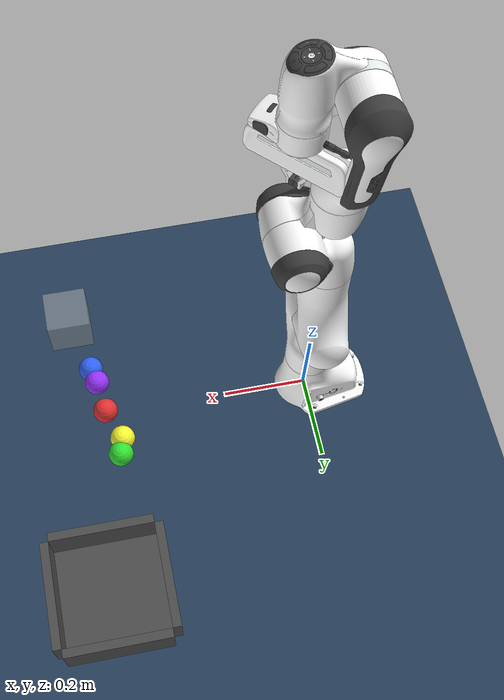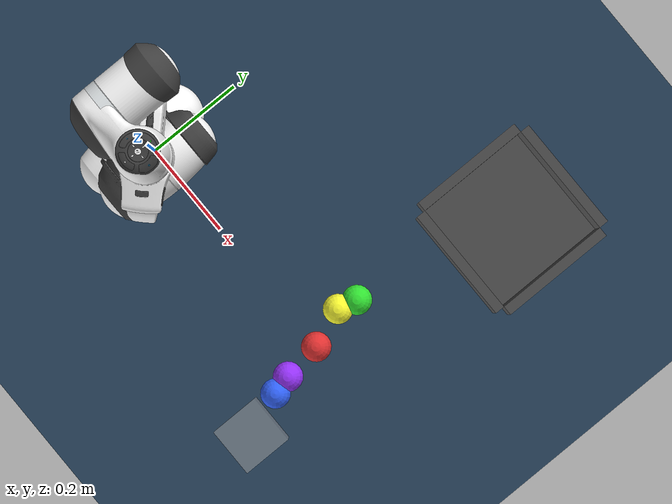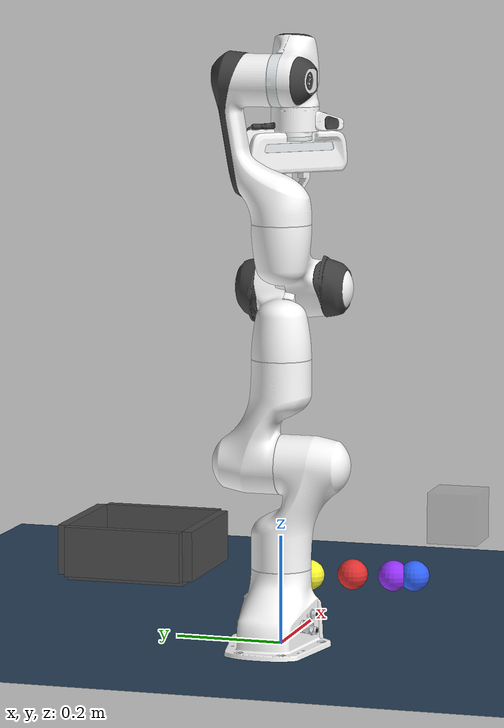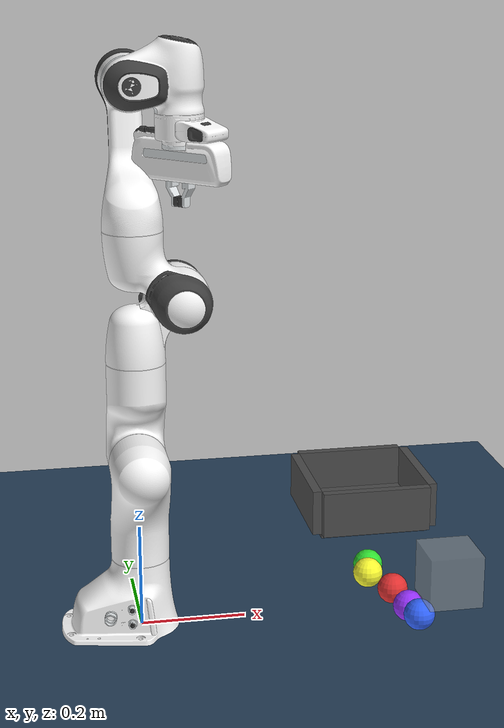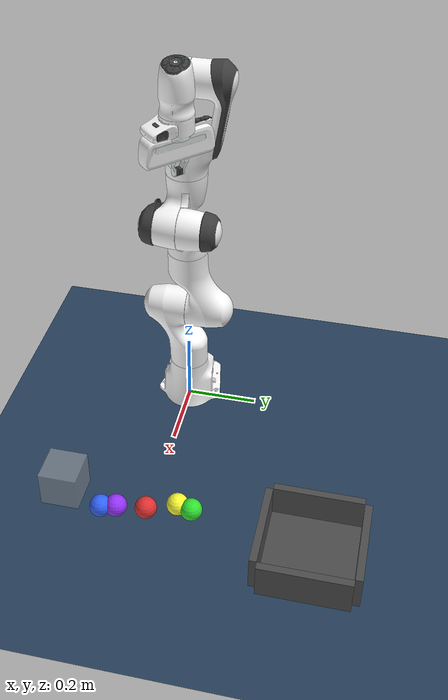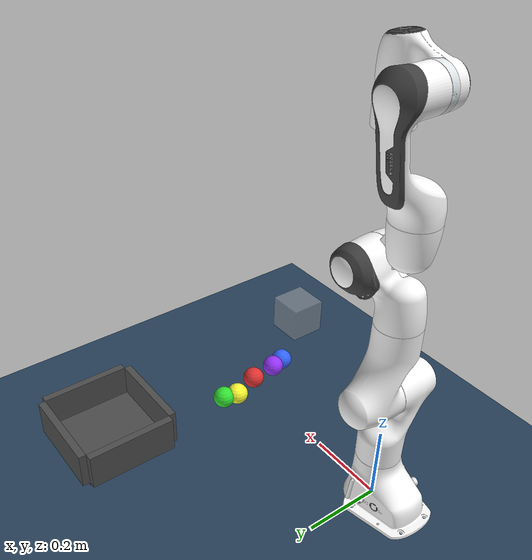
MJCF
<mujoco model="panda pick-place task">
  <include file="panda.xml"/>

  <statistic center="0.6 0 0.4" extent="1.5"/>

  <option timestep="0.002" integrator="implicitfast" iterations="50" ls_iterations="100">
    <flag eulerdamp="disable"/>
  </option>

  <default>
    <default class="object">
      <geom friction="5.0 0.1 0.01" solimp="0.998 0.998 0.001" solref="0.002 1" condim="4"/>
    </default>
  </default>

  <custom>
    <numeric data="12" name="max_contact_points"/>
  </custom>

  <visual>
    <headlight diffuse="0.6 0.6 0.6" ambient="0.3 0.3 0.3" specular="0 0 0"/>
    <rgba haze="0.15 0.25 0.35 1"/>
    <global azimuth="120" elevation="-20"/>
  </visual>

  <asset>
    <texture type="skybox" builtin="gradient" rgb1="0.3 0.5 0.7" rgb2="0 0 0" width="512" height="3072"/>
    <texture type="2d" name="groundplane" builtin="checker" mark="edge" rgb1="0.2 0.3 0.4" rgb2="0.1 0.2 0.3"
      markrgb="0.8 0.8 0.8" width="300" height="300"/>
    <material name="groundplane" texture="groundplane" texuniform="true" texrepeat="5 5" reflectance="0.2"/>
  </asset>

  <worldbody>
    <light name="top_light" pos="0 0 1.5" dir="0 0 -1" directional="true"/>
    <geom name="floor" size="0 0 0.05" type="plane" material="groundplane" contype="1"/>

    <!-- Pick-and-place task: colored spheres on table -->
    <!-- Positioned at 0.5m (proven working position with successful grasp) -->
    <!-- Higher friction and softer contacts for better grasping -->
    <body name="object_body_red" pos="0.5 0 0.03">
      <freejoint/>
      <geom name="object_geom_red" type="sphere" size="0.03" rgba="0.9 0.2 0.2 1"
            class="object" contype="2" conaffinity="1" mass="0.05"/>
      <site name="object_site_red" pos="0 0 0" size="0.01" rgba="1 0 0 0"/>
    </body>

    <body name="object_body_green" pos="0.48 0.12 0.03">
      <freejoint/>
      <geom name="object_geom_green" type="sphere" size="0.03" rgba="0.2 0.9 0.2 1"
            class="object" contype="2" conaffinity="1" mass="0.05"/>
      <site name="object_site_green" pos="0 0 0" size="0.01" rgba="0 1 0 0"/>
    </body>

    <body name="object_body_blue" pos="0.52 -0.12 0.03">
      <freejoint/>
      <geom name="object_geom_blue" type="sphere" size="0.03" rgba="0.2 0.4 1 1"
            class="object" contype="2" conaffinity="1" mass="0.05"/>
      <site name="object_site_blue" pos="0 0 0" size="0.01" rgba="0 0 1 0"/>
    </body>

    <body name="object_body_yellow" pos="0.47 0.08 0.03">
      <freejoint/>
      <geom name="object_geom_yellow" type="sphere" size="0.03" rgba="1 1 0.2 1"
            class="object" contype="2" conaffinity="1" mass="0.05"/>
      <site name="object_site_yellow" pos="0 0 0" size="0.01" rgba="1 1 0 0"/>
    </body>

    <body name="object_body_purple" pos="0.51 -0.08 0.03">
      <freejoint/>
      <geom name="object_geom_purple" type="sphere" size="0.03" rgba="0.6 0.2 1 1"
            class="object" contype="2" conaffinity="1" mass="0.05"/>
      <site name="object_site_purple" pos="0 0 0" size="0.01" rgba="0.6 0 1 0"/>
    </body>

    <!-- Goal bin - positioned closer to robot base for easier center placement -->
    <body name="bin" pos="0.55 0.45 0.0">
      <geom name="bin_bottom" type="box" size="0.12 0.12 0.01" rgba="0.3 0.3 0.3 1" pos="0 0 0.01"/>
      <geom name="bin_wall_x+" type="box" size="0.01 0.12 0.05" rgba="0.3 0.3 0.3 1" pos="0.13 0 0.06"/>
      <geom name="bin_wall_x-" type="box" size="0.01 0.12 0.05" rgba="0.3 0.3 0.3 1" pos="-0.13 0 0.06"/>
      <geom name="bin_wall_y+" type="box" size="0.12 0.01 0.05" rgba="0.3 0.3 0.3 1" pos="0 0.13 0.06"/>
      <geom name="bin_wall_y-" type="box" size="0.12 0.01 0.05" rgba="0.3 0.3 0.3 1" pos="0 -0.13 0.06"/>
      <site name="bin_site" pos="0 0 0.08" size="0.02" rgba="1 1 0 0"/>
    </body>

    <!-- Optional occluder -->
    <body name="occluder_body" pos="0.55 -0.2 0.15">
      <freejoint/>
      <geom name="occluder_geom" type="box" size="0.05 0.05 0.05" rgba="0.7 0.7 0.7 0.5" contype="1" conaffinity="1" mass="0.1"/>
    </body>

    <!-- Overhead camera looking straight down -->
    <camera name="top" mode="fixed" pos="0.6 0 1.0" euler="180 0 0" fovy="55"/>

  </worldbody>

  <!-- Keyframes for pick-and-place (adapted from Menagerie mjx_single_cube.xml) -->
  <!-- qpos order: 7 arm joints + 2 gripper joints + 5 objects (7 DOF each: xyz + quat wxyz) + 1 occluder (7 DOF) = 51 total -->
  <keyframe>
    <!-- Home: Forward-reaching comfortable pose -->
    <key name="home"
      qpos="0 0.3 0 -1.57079 0 2.0 -0.7853 0.04 0.04
            0.5 0 0.03 1 0 0 0
            0.48 0.12 0.03 1 0 0 0
            0.52 -0.12 0.03 1 0 0 0
            0.47 0.08 0.03 1 0 0 0
            0.51 -0.08 0.03 1 0 0 0
            0.55 -0.2 0.15 1 0 0 0"
      ctrl="0 0.3 0 -1.57079 0 2.0 -0.7853 255"/>

    <!-- Pre-grasp: Above object at safe height (adapted from "pickup" in Menagerie) -->
    <key name="pre_grasp"
      qpos="0.29 0.45 -0.14 -2.1 -0.03 2.5 -0.49 0.04 0.04
            0.5 0 0.03 1 0 0 0
            0.48 0.12 0.03 1 0 0 0
            0.52 -0.12 0.03 1 0 0 0
            0.47 0.08 0.03 1 0 0 0
            0.51 -0.08 0.03 1 0 0 0
            0.55 -0.2 0.15 1 0 0 0"
      ctrl="0.29 0.45 -0.14 -2.1 -0.03 2.5 -0.49 255"/>

    <!-- Grasp: Lowered to object level -->
    <key name="grasp"
      qpos="0.29 0.51 -0.14 -2.18 -0.03 2.52 -0.49 0.04 0.04
            0.5 0 0.03 1 0 0 0
            0.48 0.12 0.03 1 0 0 0
            0.52 -0.12 0.03 1 0 0 0
            0.47 0.08 0.03 1 0 0 0
            0.51 -0.08 0.03 1 0 0 0
            0.55 -0.2 0.15 1 0 0 0"
      ctrl="0.29 0.51 -0.14 -2.18 -0.03 2.52 -0.49 255"/>

    <!-- Grasp closed: Same position, gripper closed -->
    <key name="grasp_closed"
      qpos="0.29 0.51 -0.14 -2.18 -0.03 2.52 -0.49 0.0 0.0
            0.5 0 0.03 1 0 0 0
            0.48 0.12 0.03 1 0 0 0
            0.52 -0.12 0.03 1 0 0 0
            0.47 0.08 0.03 1 0 0 0
            0.51 -0.08 0.03 1 0 0 0
            0.55 -0.2 0.15 1 0 0 0"
      ctrl="0.29 0.51 -0.14 -2.18 -0.03 2.52 -0.49 0"/>

    <!-- Lift: Raised back to safe height -->
    <key name="lift"
      qpos="0.29 0.45 -0.14 -2.1 -0.03 2.5 -0.49 0.0 0.0
            0.5 0 0.03 1 0 0 0
            0.48 0.12 0.03 1 0 0 0
            0.52 -0.12 0.03 1 0 0 0
            0.47 0.08 0.03 1 0 0 0
            0.51 -0.08 0.03 1 0 0 0
            0.55 -0.2 0.15 1 0 0 0"
      ctrl="0.29 0.45 -0.14 -2.1 -0.03 2.5 -0.49 0"/>

    <!-- Transport: Move toward bin (higher Z, forward X) -->
    <key name="transport"
      qpos="0.4 0.3 -0.1 -1.9 0.0 2.3 -0.6 0.0 0.0
            0.5 0 0.03 1 0 0 0
            0.48 0.12 0.03 1 0 0 0
            0.52 -0.12 0.03 1 0 0 0
            0.47 0.08 0.03 1 0 0 0
            0.51 -0.08 0.03 1 0 0 0
            0.55 -0.2 0.15 1 0 0 0"
      ctrl="0.4 0.3 -0.1 -1.9 0.0 2.3 -0.6 0"/>

    <!-- Place: Lower into bin -->
    <key name="place"
      qpos="0.5 0.2 -0.08 -1.8 0.05 2.2 -0.65 0.0 0.0
            0.5 0 0.03 1 0 0 0
            0.48 0.12 0.03 1 0 0 0
            0.52 -0.12 0.03 1 0 0 0
            0.47 0.08 0.03 1 0 0 0
            0.51 -0.08 0.03 1 0 0 0
            0.55 -0.2 0.15 1 0 0 0"
      ctrl="0.5 0.2 -0.08 -1.8 0.05 2.2 -0.65 0"/>

    <!-- Place open: Release object -->
    <key name="place_open"
      qpos="0.5 0.2 -0.08 -1.8 0.05 2.2 -0.65 0.04 0.04
            0.5 0 0.03 1 0 0 0
            0.48 0.12 0.03 1 0 0 0
            0.52 -0.12 0.03 1 0 0 0
            0.47 0.08 0.03 1 0 0 0
            0.51 -0.08 0.03 1 0 0 0
            0.55 -0.2 0.15 1 0 0 0"
      ctrl="0.5 0.2 -0.08 -1.8 0.05 2.2 -0.65 255"/>
  </keyframe>

</mujoco>

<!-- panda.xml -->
<mujoco model="panda">
  <compiler angle="radian" meshdir="assets" autolimits="true"/>

  <option timestep="0.005" iterations="5" ls_iterations="8" integrator="implicitfast"/>

  <default>
    <default class="panda">
      <material specular="0.5" shininess="0.25"/>
      <joint armature="0.5" damping="10" axis="0 0 1" range="-2.8973 2.8973"/>
      <general dyntype="none" biastype="affine" ctrlrange="-2.8973 2.8973" forcerange="-87 87"/>
      <position forcerange="-100 100"/>
      <default class="finger">
        <joint axis="0 1 0" type="slide" range="0 0.04" damping="10"/>
      </default>

      <default class="visual">
        <geom type="mesh" contype="0" conaffinity="0" group="2"/>
      </default>
      <default class="collision">
        <geom type="mesh" group="3"/>
        <default class="fingertip_pad_collision_1">
          <geom type="box" size="0.0085 0.004 0.0085" pos="0 0.0055 0.0445" friction="5.0 0.1 0.01" solimp="0.998 0.998 0.001" solref="0.002 1" condim="4" contype="1" conaffinity="1"/>
        </default>
        <default class="fingertip_pad_collision_2">
          <geom type="box" size="0.003 0.002 0.003" pos="0.0055 0.002 0.05" friction="5.0 0.1 0.01" solimp="0.998 0.998 0.001" solref="0.002 1" condim="4" contype="1" conaffinity="1"/>
        </default>
        <default class="fingertip_pad_collision_3">
          <geom type="box" size="0.003 0.002 0.003" pos="-0.0055 0.002 0.05" friction="5.0 0.1 0.01" solimp="0.998 0.998 0.001" solref="0.002 1" condim="4" contype="1" conaffinity="1"/>
        </default>
        <default class="fingertip_pad_collision_4">
          <geom type="box" size="0.003 0.002 0.0035" pos="0.0055 0.002 0.0395" friction="5.0 0.1 0.01" solimp="0.998 0.998 0.001" solref="0.002 1" condim="4" contype="1" conaffinity="1"/>
        </default>
        <default class="fingertip_pad_collision_5">
          <geom type="box" size="0.003 0.002 0.0035" pos="-0.0055 0.002 0.0395" friction="5.0 0.1 0.01" solimp="0.998 0.998 0.001" solref="0.002 1" condim="4" contype="1" conaffinity="1"/>
        </default>
      </default>
    </default>
  </default>

  <asset>
    <material class="panda" name="white" rgba="1 1 1 1"/>
    <material class="panda" name="off_white" rgba="0.901961 0.921569 0.929412 1"/>
    <material class="panda" name="black" rgba="0.25 0.25 0.25 1"/>
    <material class="panda" name="green" rgba="0 1 0 1"/>
    <material class="panda" name="light_blue" rgba="0.039216 0.541176 0.780392 1"/>

    <!-- Collision meshes -->
    <mesh name="link0_c" file="link0.stl"/>
    <mesh name="link1_c" file="link1.stl"/>
    <mesh name="link2_c" file="link2.stl"/>
    <mesh name="link3_c" file="link3.stl"/>
    <mesh name="link4_c" file="link4.stl"/>
    <mesh name="link5_c0" file="link5_collision_0.obj"/>
    <mesh name="link5_c1" file="link5_collision_1.obj"/>
    <mesh name="link5_c2" file="link5_collision_2.obj"/>
    <mesh name="link6_c" file="link6.stl"/>
    <mesh name="link7_c" file="link7.stl"/>
    <mesh name="hand_c" file="hand.stl"/>

    <!-- Visual meshes -->
    <mesh file="link0_0.obj"/>
    <mesh file="link0_1.obj"/>
    <mesh file="link0_2.obj"/>
    <mesh file="link0_3.obj"/>
    <mesh file="link0_4.obj"/>
    <mesh file="link0_5.obj"/>
    <mesh file="link0_7.obj"/>
    <mesh file="link0_8.obj"/>
    <mesh file="link0_9.obj"/>
    <mesh file="link0_10.obj"/>
    <mesh file="link0_11.obj"/>
    <mesh file="link1.obj"/>
    <mesh file="link2.obj"/>
    <mesh file="link3_0.obj"/>
    <mesh file="link3_1.obj"/>
    <mesh file="link3_2.obj"/>
    <mesh file="link3_3.obj"/>
    <mesh file="link4_0.obj"/>
    <mesh file="link4_1.obj"/>
    <mesh file="link4_2.obj"/>
    <mesh file="link4_3.obj"/>
    <mesh file="link5_0.obj"/>
    <mesh file="link5_1.obj"/>
    <mesh file="link5_2.obj"/>
    <mesh file="link6_0.obj"/>
    <mesh file="link6_1.obj"/>
    <mesh file="link6_2.obj"/>
    <mesh file="link6_3.obj"/>
    <mesh file="link6_4.obj"/>
    <mesh file="link6_5.obj"/>
    <mesh file="link6_6.obj"/>
    <mesh file="link6_7.obj"/>
    <mesh file="link6_8.obj"/>
    <mesh file="link6_9.obj"/>
    <mesh file="link6_10.obj"/>
    <mesh file="link6_11.obj"/>
    <mesh file="link6_12.obj"/>
    <mesh file="link6_13.obj"/>
    <mesh file="link6_14.obj"/>
    <mesh file="link6_15.obj"/>
    <mesh file="link6_16.obj"/>
    <mesh file="link7_0.obj"/>
    <mesh file="link7_1.obj"/>
    <mesh file="link7_2.obj"/>
    <mesh file="link7_3.obj"/>
    <mesh file="link7_4.obj"/>
    <mesh file="link7_5.obj"/>
    <mesh file="link7_6.obj"/>
    <mesh file="link7_7.obj"/>
    <mesh file="hand_0.obj"/>
    <mesh file="hand_1.obj"/>
    <mesh file="hand_2.obj"/>
    <mesh file="hand_3.obj"/>
    <mesh file="hand_4.obj"/>
    <mesh file="finger_0.obj"/>
    <mesh file="finger_1.obj"/>
  </asset>

  <worldbody>
    <light name="top" pos="0 0 2" mode="trackcom"/>
    <body name="link0" childclass="panda">
      <inertial mass="0.629769" pos="-0.041018 -0.00014 0.049974"
        fullinertia="0.00315 0.00388 0.004285 8.2904e-7 0.00015 8.2299e-6"/>
      <geom mesh="link0_0" material="off_white" class="visual"/>
      <geom mesh="link0_1" material="black" class="visual"/>
      <geom mesh="link0_2" material="off_white" class="visual"/>
      <geom mesh="link0_3" material="black" class="visual"/>
      <geom mesh="link0_4" material="off_white" class="visual"/>
      <geom mesh="link0_5" material="black" class="visual"/>
      <geom mesh="link0_7" material="white" class="visual"/>
      <geom mesh="link0_8" material="white" class="visual"/>
      <geom mesh="link0_9" material="black" class="visual"/>
      <geom mesh="link0_10" material="off_white" class="visual"/>
      <geom mesh="link0_11" material="white" class="visual"/>
      <geom mesh="link0_c" class="collision"/>
      <body name="link1" pos="0 0 0.333">
        <inertial mass="4.970684" pos="0.003875 0.002081 -0.04762"
          fullinertia="0.70337 0.70661 0.0091170 -0.00013900 0.0067720 0.019169"/>
        <joint name="joint1" damping="40"/>
        <geom material="white" mesh="link1" class="visual"/>
        <geom mesh="link1_c" class="collision"/>
        <body name="link2" quat="1 -1 0 0">
          <inertial mass="0.646926" pos="-0.003141 -0.02872 0.003495"
            fullinertia="0.0079620 2.8110e-2 2.5995e-2 -3.925e-3 1.0254e-2 7.04e-4"/>
          <joint name="joint2" range="-1.7628 1.7628" damping="40"/>
          <geom material="white" mesh="link2" class="visual"/>
          <geom mesh="link2_c" class="collision"/>
          <body name="link3" pos="0 -0.316 0" quat="1 1 0 0">
            <joint name="joint3" damping="40"/>
            <inertial mass="3.228604" pos="2.7518e-2 3.9252e-2 -6.6502e-2"
              fullinertia="3.7242e-2 3.6155e-2 1.083e-2 -4.761e-3 -1.1396e-2 -1.2805e-2"/>
            <geom mesh="link3_0" material="white" class="visual"/>
            <geom mesh="link3_1" material="white" class="visual"/>
            <geom mesh="link3_2" material="white" class="visual"/>
            <geom mesh="link3_3" material="black" class="visual"/>
            <geom mesh="link3_c" class="collision"/>
            <body name="link4" pos="0.0825 0 0" quat="1 1 0 0">
              <inertial mass="3.587895" pos="-5.317e-2 1.04419e-1 2.7454e-2"
                fullinertia="2.5853e-2 1.9552e-2 2.8323e-2 7.796e-3 -1.332e-3 8.641e-3"/>
              <joint name="joint4" range="-3.0718 -0.0698" damping="40"/>
              <geom mesh="link4_0" material="white" class="visual"/>
              <geom mesh="link4_1" material="white" class="visual"/>
              <geom mesh="link4_2" material="black" class="visual"/>
              <geom mesh="link4_3" material="white" class="visual"/>
              <geom mesh="link4_c" class="collision"/>
              <body name="link5" pos="-0.0825 0.384 0" quat="1 -1 0 0">
                <inertial mass="1.225946" pos="-1.1953e-2 4.1065e-2 -3.8437e-2"
                  fullinertia="3.5549e-2 2.9474e-2 8.627e-3 -2.117e-3 -4.037e-3 2.29e-4"/>
                <joint name="joint5" damping="2"/>
                <geom mesh="link5_0" material="black" class="visual"/>
                <geom mesh="link5_1" material="white" class="visual"/>
                <geom mesh="link5_2" material="white" class="visual"/>
                <geom mesh="link5_c0" class="collision"/>
                <geom mesh="link5_c1" class="collision"/>
                <geom mesh="link5_c2" class="collision"/>
                <body name="link6" quat="1 1 0 0">
                  <inertial mass="1.666555" pos="6.0149e-2 -1.4117e-2 -1.0517e-2"
                    fullinertia="1.964e-3 4.354e-3 5.433e-3 1.09e-4 -1.158e-3 3.41e-4"/>
                  <joint name="joint6" range="-0.0175 3.7525" damping="2"/>
                  <geom mesh="link6_0" material="off_white" class="visual"/>
                  <geom mesh="link6_1" material="white" class="visual"/>
                  <geom mesh="link6_2" material="black" class="visual"/>
                  <geom mesh="link6_3" material="white" class="visual"/>
                  <geom mesh="link6_4" material="white" class="visual"/>
                  <geom mesh="link6_5" material="white" class="visual"/>
                  <geom mesh="link6_6" material="white" class="visual"/>
                  <geom mesh="link6_7" material="light_blue" class="visual"/>
                  <geom mesh="link6_8" material="light_blue" class="visual"/>
                  <geom mesh="link6_9" material="black" class="visual"/>
                  <geom mesh="link6_10" material="black" class="visual"/>
                  <geom mesh="link6_11" material="white" class="visual"/>
                  <geom mesh="link6_12" material="green" class="visual"/>
                  <geom mesh="link6_13" material="white" class="visual"/>
                  <geom mesh="link6_14" material="black" class="visual"/>
                  <geom mesh="link6_15" material="black" class="visual"/>
                  <geom mesh="link6_16" material="white" class="visual"/>
                  <geom mesh="link6_c" class="collision"/>
                  <body name="link7" pos="0.088 0 0" quat="1 1 0 0">
                    <inertial mass="7.35522e-01" pos="1.0517e-2 -4.252e-3 6.1597e-2"
                      fullinertia="1.2516e-2 1.0027e-2 4.815e-3 -4.28e-4 -1.196e-3 -7.41e-4"/>
                    <joint name="joint7" damping="2"/>
                    <geom mesh="link7_0" material="white" class="visual"/>
                    <geom mesh="link7_1" material="black" class="visual"/>
                    <geom mesh="link7_2" material="black" class="visual"/>
                    <geom mesh="link7_3" material="black" class="visual"/>
                    <geom mesh="link7_4" material="black" class="visual"/>
                    <geom mesh="link7_5" material="black" class="visual"/>
                    <geom mesh="link7_6" material="black" class="visual"/>
                    <geom mesh="link7_7" material="white" class="visual"/>
                    <geom mesh="link7_c" class="collision"/>
                    <body name="hand" pos="0 0 0.107" quat="0.9238795 0 0 -0.3826834">
                      <inertial mass="0.73" pos="-0.01 0 0.03" diaginertia="0.001 0.0025 0.0017"/>
                      <geom mesh="hand_0" material="off_white" class="visual"/>
                      <geom mesh="hand_1" material="black" class="visual"/>
                      <geom mesh="hand_2" material="black" class="visual"/>
                      <geom mesh="hand_3" material="white" class="visual"/>
                      <geom mesh="hand_4" material="off_white" class="visual"/>
                      <geom mesh="hand_c" class="collision"/>
                      <!-- Gripper site for kinematics and control -->
                      <site name="gripper" pos="0 0 0.1" size="0.01" rgba="1 0 0 0"/>
                      <body name="left_finger" pos="0 0 0.0584">
                        <inertial mass="0.015" pos="0 0 0" diaginertia="2.375e-6 2.375e-6 7.5e-7"/>
                        <joint name="finger_joint1" class="finger"/>
                        <geom mesh="finger_0" material="off_white" class="visual"/>
                        <geom mesh="finger_1" material="black" class="visual"/>
                        <geom mesh="finger_0" class="collision"/>
                        <geom class="fingertip_pad_collision_1"/>
                        <geom class="fingertip_pad_collision_2"/>
                        <geom class="fingertip_pad_collision_3"/>
                        <geom class="fingertip_pad_collision_4"/>
                        <geom class="fingertip_pad_collision_5"/>
                      </body>
                      <body name="right_finger" pos="0 0 0.0584" quat="0 0 0 1">
                        <inertial mass="0.015" pos="0 0 0" diaginertia="2.375e-6 2.375e-6 7.5e-7"/>
                        <joint name="finger_joint2" class="finger"/>
                        <geom mesh="finger_0" material="off_white" class="visual"/>
                        <geom mesh="finger_1" material="black" class="visual"/>
                        <geom mesh="finger_0" class="collision"/>
                        <geom class="fingertip_pad_collision_1"/>
                        <geom class="fingertip_pad_collision_2"/>
                        <geom class="fingertip_pad_collision_3"/>
                        <geom class="fingertip_pad_collision_4"/>
                        <geom class="fingertip_pad_collision_5"/>
                      </body>
                    </body>
                  </body>
                </body>
              </body>
            </body>
          </body>
        </body>
      </body>
    </body>
  </worldbody>

  <tendon>
    <fixed name="split">
      <joint joint="finger_joint1" coef="0.5"/>
      <joint joint="finger_joint2" coef="0.5"/>
    </fixed>
  </tendon>

  <equality>
    <joint joint1="finger_joint1" joint2="finger_joint2" solimp="0.95 0.99 0.001" solref="0.005 1"/>
  </equality>

  <actuator>
    <!-- Position-controlled actuators for the arm joints (Menagerie MJX style) -->
    <position class="panda" name="actuator1" joint="joint1" kp="1000" kv="20" ctrlrange="-2.8973 2.8973"/>
    <position class="panda" name="actuator2" joint="joint2" kp="1000" kv="20" ctrlrange="-1.7628 1.7628"/>
    <position class="panda" name="actuator3" joint="joint3" kp="750" kv="4" ctrlrange="-2.8973 2.8973"/>
    <position class="panda" name="actuator4" joint="joint4" kp="750" kv="4" ctrlrange="-3.0718 -0.0698"/>
    <position class="panda" name="actuator5" joint="joint5" kp="300" kv="2" forcerange="-12 12" ctrlrange="-2.8973 2.8973"/>
    <position class="panda" name="actuator6" joint="joint6" kp="300" kv="2" forcerange="-12 12" ctrlrange="-0.0175 3.7525"/>
    <position class="panda" name="actuator7" joint="joint7" kp="300" kv="2" forcerange="-12 12" ctrlrange="-2.8973 2.8973"/>
    <!-- Tendon-based gripper control (controls both fingers via 'split' tendon) -->
    <general class="panda" name="actuator8" tendon="split"
     ctrlrange="0 0.04" gainprm="1000 0 0" biasprm="0 -1000 -10" forcerange="-200 200"/>
  </actuator>

  <contact>
    <exclude body1="link0" body2="link1"/>
  </contact>
</mujoco>
